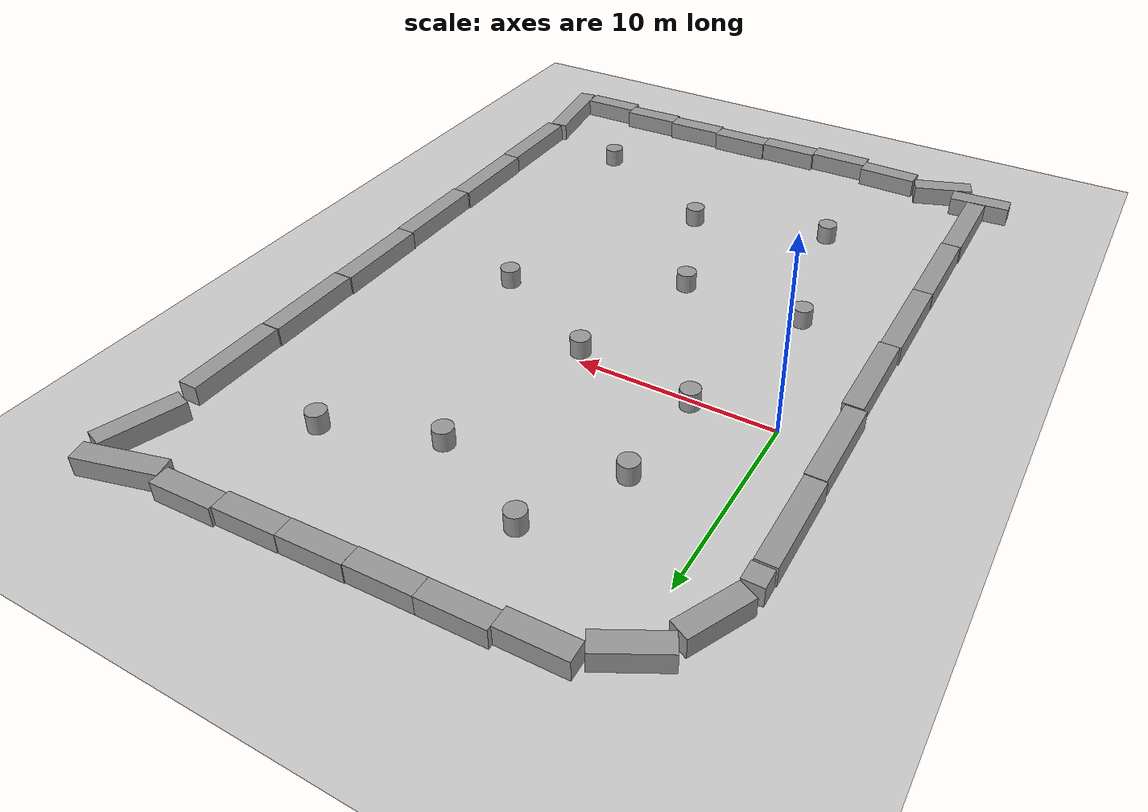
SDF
<sdf version="1.6">
 <world name="default">
  <model name="ground_plane">
   <static>1</static>
   <link name="link">
    <collision name="collision">
     <geometry><plane><normal>0 0 1</normal><size>100 100</size></plane></geometry>
     <surface>
      <contact><collide_bitmask>65535</collide_bitmask></contact>
      <friction><ode><mu>100</mu><mu2>50</mu2></ode></friction>
     </surface>
    </collision>
    <visual name="visual">
     <cast_shadows>0</cast_shadows>
     <geometry><plane><normal>0 0 1</normal><size>100 100</size></plane></geometry>
     <material>
      <script><uri>file://media/materials/scripts/gazebo.material</uri><name>Gazebo/Grey</name></script>
     </material>
    </visual>
   </link>
  </model>
  <light name="sun" type="directional">
   <pose>0 0 10 0 -0 0</pose>
   <diffuse>0.8 0.8 0.8 1</diffuse>
   <specular>0.2 0.2 0.2 1</specular>
   <attenuation>
    <range>1000</range>
    <constant>0.9</constant>
    <linear>0.01</linear>
    <quadratic>0.001</quadratic>
   </attenuation>
   <direction>-0.5 0.1 -0.9</direction>
  </light>
  <gravity>0 0 -9.8</gravity>
  <magnetic_field>6e-06 2.3e-05 -4.2e-05</magnetic_field>
  <atmosphere type="adiabatic"/>
  <physics name="default_physics" default="0" type="ode">
   <max_step_size>0.001</max_step_size>
   <real_time_factor>1</real_time_factor>
   <real_time_update_rate>1000</real_time_update_rate>
  </physics>
  <scene><ambient>0.4 0.4 0.4 1</ambient><background>0.7 0.7 0.7 1</background><shadows>1</shadows></scene>
  <audio><device>default</device></audio>
  <spherical_coordinates>
   <surface_model>EARTH_WGS84</surface_model>
   <latitude_deg>0</latitude_deg>
   <longitude_deg>0</longitude_deg>
   <elevation>0</elevation>
   <heading_deg>0</heading_deg>
  </spherical_coordinates>
  <model name="unit_box">
   <pose>-2.73566 0.438321 0.498102 -0.000778 -0 1e-05</pose>
   <link name="link">
    <inertial>
     <mass>1</mass>
     <inertia>
      <ixx>0.166667</ixx>
      <ixy>0</ixy>
      <ixz>0</ixz>
      <iyy>0.166667</iyy>
      <iyz>0</iyz>
      <izz>0.166667</izz>
     </inertia>
    </inertial>
    <collision name="collision"><geometry><box><size>1 4.87947 1</size></box></geometry></collision>
    <visual name="visual">
     <geometry><box><size>1 4.87947 1</size></box></geometry>
     <material>
      <script><name>Gazebo/Grey</name><uri>file://media/materials/scripts/gazebo.material</uri></script>
     </material>
    </visual>
   </link>
  </model>
  <model name="unit_box_clone">
   <pose>-2.56296 -4.59306 0.497729 0.000895 -0 -1.3e-05</pose>
   <link name="link">
    <inertial>
     <mass>1</mass>
     <inertia>
      <ixx>0.166667</ixx>
      <ixy>0</ixy>
      <ixz>0</ixz>
      <iyy>0.166667</iyy>
      <iyz>0</iyz>
      <izz>0.166667</izz>
     </inertia>
    </inertial>
    <collision name="collision"><geometry><box><size>1 5.07484 1</size></box></geometry></collision>
    <visual name="visual">
     <geometry><box><size>1 5.07484 1</size></box></geometry>
     <material>
      <script><name>Gazebo/Grey</name><uri>file://media/materials/scripts/gazebo.material</uri></script>
     </material>
    </visual>
   </link>
  </model>
  <model name="unit_box_clone_0">
   <pose>-2.78489 5.45828 0.5 0 1e-06 1.9e-05</pose>
   <link name="link">
    <inertial>
     <mass>1</mass>
     <inertia>
      <ixx>0.166667</ixx>
      <ixy>0</ixy>
      <ixz>0</ixz>
      <iyy>0.166667</iyy>
      <iyz>0</iyz>
      <izz>0.166667</izz>
     </inertia>
    </inertial>
    <collision name="collision"><geometry><box><size>1 5.07484 1</size></box></geometry></collision>
    <visual name="visual">
     <geometry><box><size>1 5.07484 1</size></box></geometry>
     <material>
      <script><name>Gazebo/Grey</name><uri>file://media/materials/scripts/gazebo.material</uri></script>
     </material>
    </visual>
   </link>
  </model>
  <model name="unit_box_clone_1">
   <pose>-2.63585 -9.6685 0.497729 -0.000895 -0 1.4e-05</pose>
   <link name="link">
    <inertial>
     <mass>1</mass>
     <inertia>
      <ixx>0.166667</ixx>
      <ixy>0</ixy>
      <ixz>0</ixz>
      <iyy>0.166667</iyy>
      <iyz>0</iyz>
      <izz>0.166667</izz>
     </inertia>
    </inertial>
    <collision name="collision"><geometry><box><size>1 5.07484 1</size></box></geometry></collision>
    <visual name="visual">
     <geometry><box><size>1 5.07484 1</size></box></geometry>
     <material>
      <script><name>Gazebo/Grey</name><uri>file://media/materials/scripts/gazebo.material</uri></script>
     </material>
    </visual>
   </link>
  </model>
  <model name="unit_box_clone_2">
   <pose>-2.64959 -14.7429 0.497729 0.000895 -0 -1.6e-05</pose>
   <link name="link">
    <inertial>
     <mass>1</mass>
     <inertia>
      <ixx>0.166667</ixx>
      <ixy>0</ixy>
      <ixz>0</ixz>
      <iyy>0.166667</iyy>
      <iyz>0</iyz>
      <izz>0.166667</izz>
     </inertia>
    </inertial>
    <collision name="collision"><geometry><box><size>1 5.07484 1</size></box></geometry></collision>
    <visual name="visual">
     <geometry><box><size>1 5.07484 1</size></box></geometry>
     <material>
      <script><name>Gazebo/Grey</name><uri>file://media/materials/scripts/gazebo.material</uri></script>
     </material>
    </visual>
   </link>
  </model>
  <model name="unit_box_clone_3">
   <pose>-2.69798 -19.8233 0.497729 -0.000895 -0 1.3e-05</pose>
   <link name="link">
    <inertial>
     <mass>1</mass>
     <inertia>
      <ixx>0.166667</ixx>
      <ixy>0</ixy>
      <ixz>0</ixz>
      <iyy>0.166667</iyy>
      <iyz>0</iyz>
      <izz>0.166667</izz>
     </inertia>
    </inertial>
    <collision name="collision"><geometry><box><size>1 5.07484 1</size></box></geometry></collision>
    <visual name="visual">
     <geometry><box><size>1 5.07484 1</size></box></geometry>
     <material>
      <script><name>Gazebo/Grey</name><uri>file://media/materials/scripts/gazebo.material</uri></script>
     </material>
    </visual>
   </link>
  </model>
  <model name="unit_box_clone_4">
   <pose>23.6706 -21.9774 0.499996 0 7e-06 0.148191</pose>
   <link name="link">
    <inertial>
     <mass>1</mass>
     <inertia>
      <ixx>0.166667</ixx>
      <ixy>0</ixy>
      <ixz>0</ixz>
      <iyy>0.166667</iyy>
      <iyz>0</iyz>
      <izz>0.166667</izz>
     </inertia>
    </inertial>
    <collision name="collision"><geometry><box><size>1 5.07484 1</size></box></geometry></collision>
    <visual name="visual">
     <geometry><box><size>1 5.07484 1</size></box></geometry>
     <material>
      <script><name>Gazebo/Grey</name><uri>file://media/materials/scripts/gazebo.material</uri></script>
     </material>
    </visual>
   </link>
  </model>
  <model name="unit_box_clone_5">
   <pose>23.5159 -16.8563 0.497729 0.000895 -0 -1.4e-05</pose>
   <link name="link">
    <inertial>
     <mass>1</mass>
     <inertia>
      <ixx>0.166667</ixx>
      <ixy>0</ixy>
      <ixz>0</ixz>
      <iyy>0.166667</iyy>
      <iyz>0</iyz>
      <izz>0.166667</izz>
     </inertia>
    </inertial>
    <collision name="collision"><geometry><box><size>1 5.07484 1</size></box></geometry></collision>
    <visual name="visual">
     <geometry><box><size>1 5.07484 1</size></box></geometry>
     <material>
      <script><name>Gazebo/Grey</name><uri>file://media/materials/scripts/gazebo.material</uri></script>
     </material>
    </visual>
   </link>
  </model>
  <model name="unit_box_clone_6">
   <pose>23.4721 -11.7794 0.499995 -1e-06 3e-06 4.2e-05</pose>
   <link name="link">
    <inertial>
     <mass>1</mass>
     <inertia>
      <ixx>0.166667</ixx>
      <ixy>0</ixy>
      <ixz>0</ixz>
      <iyy>0.166667</iyy>
      <iyz>0</iyz>
      <izz>0.166667</izz>
     </inertia>
    </inertial>
    <collision name="collision"><geometry><box><size>1 5.07484 1</size></box></geometry></collision>
    <visual name="visual">
     <geometry><box><size>1 5.07484 1</size></box></geometry>
     <material>
      <script><name>Gazebo/Grey</name><uri>file://media/materials/scripts/gazebo.material</uri></script>
     </material>
    </visual>
   </link>
  </model>
  <model name="unit_box_clone_7">
   <pose>23.5486 -6.70446 0.499999 -0 -2e-06 5.7e-05</pose>
   <link name="link">
    <inertial>
     <mass>1</mass>
     <inertia>
      <ixx>0.166667</ixx>
      <ixy>0</ixy>
      <ixz>0</ixz>
      <iyy>0.166667</iyy>
      <iyz>0</iyz>
      <izz>0.166667</izz>
     </inertia>
    </inertial>
    <collision name="collision"><geometry><box><size>1 5.07484 1</size></box></geometry></collision>
    <visual name="visual">
     <geometry><box><size>1 5.07484 1</size></box></geometry>
     <material>
      <script><name>Gazebo/Grey</name><uri>file://media/materials/scripts/gazebo.material</uri></script>
     </material>
    </visual>
   </link>
  </model>
  <model name="unit_box_clone_8">
   <pose>23.4944 -1.62947 0.499995 1e-06 -3e-06 6.4e-05</pose>
   <link name="link">
    <inertial>
     <mass>1</mass>
     <inertia>
      <ixx>0.166667</ixx>
      <ixy>0</ixy>
      <ixz>0</ixz>
      <iyy>0.166667</iyy>
      <iyz>0</iyz>
      <izz>0.166667</izz>
     </inertia>
    </inertial>
    <collision name="collision"><geometry><box><size>1 5.07484 1</size></box></geometry></collision>
    <visual name="visual">
     <geometry><box><size>1 5.07484 1</size></box></geometry>
     <material>
      <script><name>Gazebo/Grey</name><uri>file://media/materials/scripts/gazebo.material</uri></script>
     </material>
    </visual>
   </link>
  </model>
  <model name="unit_box_clone_9">
   <pose>23.5521 3.46835 0.497729 -0.000895 -0 1.3e-05</pose>
   <link name="link">
    <inertial>
     <mass>1</mass>
     <inertia>
      <ixx>0.166667</ixx>
      <ixy>0</ixy>
      <ixz>0</ixz>
      <iyy>0.166667</iyy>
      <iyz>0</iyz>
      <izz>0.166667</izz>
     </inertia>
    </inertial>
    <collision name="collision"><geometry><box><size>1 5.07484 1</size></box></geometry></collision>
    <visual name="visual">
     <geometry><box><size>1 5.07484 1</size></box></geometry>
     <material>
      <script><name>Gazebo/Grey</name><uri>file://media/materials/scripts/gazebo.material</uri></script>
     </material>
    </visual>
   </link>
  </model>
  <model name="unit_box_clone_10">
   <pose>23.5964 8.5748 0.497729 0.000895 -0 -1.3e-05</pose>
   <link name="link">
    <inertial>
     <mass>1</mass>
     <inertia>
      <ixx>0.166667</ixx>
      <ixy>0</ixy>
      <ixz>0</ixz>
      <iyy>0.166667</iyy>
      <iyz>0</iyz>
      <izz>0.166667</izz>
     </inertia>
    </inertial>
    <collision name="collision"><geometry><box><size>1 5.07484 1</size></box></geometry></collision>
    <visual name="visual">
     <geometry><box><size>1 5.07484 1</size></box></geometry>
     <material>
      <script><name>Gazebo/Grey</name><uri>file://media/materials/scripts/gazebo.material</uri></script>
     </material>
    </visual>
   </link>
  </model>
  <model name="unit_box_clone_11">
   <pose>23.7179 13.6698 0.5 -1e-06 1e-06 -0.317555</pose>
   <link name="link">
    <inertial>
     <mass>1</mass>
     <inertia>
      <ixx>0.166667</ixx>
      <ixy>0</ixy>
      <ixz>0</ixz>
      <iyy>0.166667</iyy>
      <iyz>0</iyz>
      <izz>0.166667</izz>
     </inertia>
    </inertial>
    <collision name="collision"><geometry><box><size>1 3.94087 1</size></box></geometry></collision>
    <visual name="visual">
     <geometry><box><size>1 3.94087 1</size></box></geometry>
     <material>
      <script><name>Gazebo/Grey</name><uri>file://media/materials/scripts/gazebo.material</uri></script>
     </material>
    </visual>
   </link>
  </model>
  <model name="unit_box_0">
   <pose>22.3346 15.8216 0.499999 -2e-06 0 0.253763</pose>
   <link name="link">
    <inertial>
     <mass>1</mass>
     <inertia>
      <ixx>0.166667</ixx>
      <ixy>0</ixy>
      <ixz>0</ixz>
      <iyy>0.166667</iyy>
      <iyz>0</iyz>
      <izz>0.166667</izz>
     </inertia>
    </inertial>
    <collision name="collision"><geometry><box><size>4.1326 1 1</size></box></geometry></collision>
    <visual name="visual">
     <geometry><box><size>4.1326 1 1</size></box></geometry>
     <material>
      <script><name>Gazebo/Grey</name><uri>file://media/materials/scripts/gazebo.material</uri></script>
     </material>
    </visual>
   </link>
  </model>
  <model name="unit_box_0_clone">
   <pose>18.6271 15.6469 0.499994 5e-06 2e-06 0.036568</pose>
   <link name="link">
    <inertial>
     <mass>1</mass>
     <inertia>
      <ixx>0.166667</ixx>
      <ixy>0</ixy>
      <ixz>0</ixz>
      <iyy>0.166667</iyy>
      <iyz>0</iyz>
      <izz>0.166667</izz>
     </inertia>
    </inertial>
    <collision name="collision"><geometry><box><size>3.17161 1 1</size></box></geometry></collision>
    <visual name="visual">
     <geometry><box><size>3.17161 1 1</size></box></geometry>
     <material>
      <script><name>Gazebo/Grey</name><uri>file://media/materials/scripts/gazebo.material</uri></script>
     </material>
    </visual>
   </link>
  </model>
  <model name="unit_box_0_clone_0">
   <pose>15.4619 15.407 0.499997 5e-06 0 0.036748</pose>
   <link name="link">
    <inertial>
     <mass>1</mass>
     <inertia>
      <ixx>0.166667</ixx>
      <ixy>0</ixy>
      <ixz>0</ixz>
      <iyy>0.166667</iyy>
      <iyz>0</iyz>
      <izz>0.166667</izz>
     </inertia>
    </inertial>
    <collision name="collision"><geometry><box><size>3.17161 1 1</size></box></geometry></collision>
    <visual name="visual">
     <geometry><box><size>3.17161 1 1</size></box></geometry>
     <material>
      <script><name>Gazebo/Grey</name><uri>file://media/materials/scripts/gazebo.material</uri></script>
     </material>
    </visual>
   </link>
  </model>
  <model name="unit_box_0_clone_1">
   <pose>12.2923 15.2751 0.499998 -4e-06 -0 0.035478</pose>
   <link name="link">
    <inertial>
     <mass>1</mass>
     <inertia>
      <ixx>0.166667</ixx>
      <ixy>0</ixy>
      <ixz>0</ixz>
      <iyy>0.166667</iyy>
      <iyz>0</iyz>
      <izz>0.166667</izz>
     </inertia>
    </inertial>
    <collision name="collision"><geometry><box><size>3.17161 1 1</size></box></geometry></collision>
    <visual name="visual">
     <geometry><box><size>3.17161 1 1</size></box></geometry>
     <material>
      <script><name>Gazebo/Grey</name><uri>file://media/materials/scripts/gazebo.material</uri></script>
     </material>
    </visual>
   </link>
  </model>
  <model name="unit_box_0_clone_2">
   <pose>9.12126 15.133 0.499995 -1e-05 -0 0.030957</pose>
   <link name="link">
    <inertial>
     <mass>1</mass>
     <inertia>
      <ixx>0.166667</ixx>
      <ixy>0</ixy>
      <ixz>0</ixz>
      <iyy>0.166667</iyy>
      <iyz>0</iyz>
      <izz>0.166667</izz>
     </inertia>
    </inertial>
    <collision name="collision"><geometry><box><size>3.17161 1 1</size></box></geometry></collision>
    <visual name="visual">
     <geometry><box><size>3.17161 1 1</size></box></geometry>
     <material>
      <script><name>Gazebo/Grey</name><uri>file://media/materials/scripts/gazebo.material</uri></script>
     </material>
    </visual>
   </link>
  </model>
  <model name="unit_box_0_clone_3">
   <pose>5.95016 15.0391 0.499941 0 -3.7e-05 0.029179</pose>
   <link name="link">
    <inertial>
     <mass>1</mass>
     <inertia>
      <ixx>0.166667</ixx>
      <ixy>0</ixy>
      <ixz>0</ixz>
      <iyy>0.166667</iyy>
      <iyz>0</iyz>
      <izz>0.166667</izz>
     </inertia>
    </inertial>
    <collision name="collision"><geometry><box><size>3.17161 1 1</size></box></geometry></collision>
    <visual name="visual">
     <geometry><box><size>3.17161 1 1</size></box></geometry>
     <material>
      <script><name>Gazebo/Grey</name><uri>file://media/materials/scripts/gazebo.material</uri></script>
     </material>
    </visual>
   </link>
  </model>
  <model name="unit_box_0_clone_4">
   <pose>2.7848 14.7287 0.499996 -7e-06 -0 0.026237</pose>
   <link name="link">
    <inertial>
     <mass>1</mass>
     <inertia>
      <ixx>0.166667</ixx>
      <ixy>0</ixy>
      <ixz>0</ixz>
      <iyy>0.166667</iyy>
      <iyz>0</iyz>
      <izz>0.166667</izz>
     </inertia>
    </inertial>
    <collision name="collision"><geometry><box><size>3.17161 1 1</size></box></geometry></collision>
    <visual name="visual">
     <geometry><box><size>3.17161 1 1</size></box></geometry>
     <material>
      <script><name>Gazebo/Grey</name><uri>file://media/materials/scripts/gazebo.material</uri></script>
     </material>
    </visual>
   </link>
  </model>
  <model name="unit_box_0_clone_5">
   <pose>-0.187222 13.4421 0.5 0 -0 0.49441</pose>
   <link name="link">
    <inertial>
     <mass>1</mass>
     <inertia>
      <ixx>0.166667</ixx>
      <ixy>0</ixy>
      <ixz>0</ixz>
      <iyy>0.166667</iyy>
      <iyz>0</iyz>
      <izz>0.166667</izz>
     </inertia>
    </inertial>
    <collision name="collision"><geometry><box><size>3.17161 1 1</size></box></geometry></collision>
    <visual name="visual">
     <geometry><box><size>3.17161 1 1</size></box></geometry>
     <material>
      <script><name>Gazebo/Grey</name><uri>file://media/materials/scripts/gazebo.material</uri></script>
     </material>
    </visual>
   </link>
  </model>
  <model name="unit_box_0_clone_6">
   <pose>-2.03338 10.8093 0.499995 0 -3e-06 1.11812</pose>
   <link name="link">
    <inertial>
     <mass>1</mass>
     <inertia>
      <ixx>0.166667</ixx>
      <ixy>0</ixy>
      <ixz>0</ixz>
      <iyy>0.166667</iyy>
      <iyz>0</iyz>
      <izz>0.166667</izz>
     </inertia>
    </inertial>
    <collision name="collision"><geometry><box><size>3.17161 1 1</size></box></geometry></collision>
    <visual name="visual">
     <geometry><box><size>3.17161 1 1</size></box></geometry>
     <material>
      <script><name>Gazebo/Grey</name><uri>file://media/materials/scripts/gazebo.material</uri></script>
     </material>
    </visual>
   </link>
  </model>
  <model name="unit_box_1">
   <pose>-2.74107 8.59458 0.499995 -1e-05 0 -9e-06</pose>
   <link name="link">
    <inertial>
     <mass>1</mass>
     <inertia>
      <ixx>0.166667</ixx>
      <ixy>0</ixy>
      <ixz>0</ixz>
      <iyy>0.166667</iyy>
      <iyz>0</iyz>
      <izz>0.166667</izz>
     </inertia>
    </inertial>
    <collision name="collision"><geometry><box><size>1 1 1</size></box></geometry></collision>
    <visual name="visual">
     <geometry><box><size>1 1 1</size></box></geometry>
     <material>
      <script><name>Gazebo/Grey</name><uri>file://media/materials/scripts/gazebo.material</uri></script>
     </material>
    </visual>
   </link>
  </model>
  <model name="unit_box_0_clone_1_clone">
   <pose>21.8329 -24.1432 0.499922 0 -0 0.017703</pose>
   <link name="link">
    <inertial>
     <mass>1</mass>
     <inertia>
      <ixx>0.166667</ixx>
      <ixy>0</ixy>
      <ixz>0</ixz>
      <iyy>0.166667</iyy>
      <iyz>0</iyz>
      <izz>0.166667</izz>
     </inertia>
    </inertial>
    <collision name="collision"><geometry><box><size>3.17161 1 1</size></box></geometry></collision>
    <visual name="visual">
     <geometry><box><size>3.17161 1 1</size></box></geometry>
     <material>
      <script><name>Gazebo/Grey</name><uri>file://media/materials/scripts/gazebo.material</uri></script>
     </material>
    </visual>
   </link>
  </model>
  <model name="unit_box_0_clone_1_clone_0">
   <pose>18.6479 -23.8456 0.499996 -7e-06 -0 0.03334</pose>
   <link name="link">
    <inertial>
     <mass>1</mass>
     <inertia>
      <ixx>0.166667</ixx>
      <ixy>0</ixy>
      <ixz>0</ixz>
      <iyy>0.166667</iyy>
      <iyz>0</iyz>
      <izz>0.166667</izz>
     </inertia>
    </inertial>
    <collision name="collision"><geometry><box><size>3.17161 1 1</size></box></geometry></collision>
    <visual name="visual">
     <geometry><box><size>3.17161 1 1</size></box></geometry>
     <material>
      <script><name>Gazebo/Grey</name><uri>file://media/materials/scripts/gazebo.material</uri></script>
     </material>
    </visual>
   </link>
  </model>
  <model name="unit_box_0_clone_1_clone_1">
   <pose>15.4727 -23.7913 0.49999 -0 -4e-06 0.033341</pose>
   <link name="link">
    <inertial>
     <mass>1</mass>
     <inertia>
      <ixx>0.166667</ixx>
      <ixy>0</ixy>
      <ixz>0</ixz>
      <iyy>0.166667</iyy>
      <iyz>0</iyz>
      <izz>0.166667</izz>
     </inertia>
    </inertial>
    <collision name="collision"><geometry><box><size>3.17161 1 1</size></box></geometry></collision>
    <visual name="visual">
     <geometry><box><size>3.17161 1 1</size></box></geometry>
     <material>
      <script><name>Gazebo/Grey</name><uri>file://media/materials/scripts/gazebo.material</uri></script>
     </material>
    </visual>
   </link>
  </model>
  <model name="unit_box_0_clone_1_clone_2">
   <pose>12.2931 -23.7122 0.50207 0.000293 -0.001213 0.02396</pose>
   <link name="link">
    <inertial>
     <mass>1</mass>
     <inertia>
      <ixx>0.166667</ixx>
      <ixy>0</ixy>
      <ixz>0</ixz>
      <iyy>0.166667</iyy>
      <iyz>0</iyz>
      <izz>0.166667</izz>
     </inertia>
    </inertial>
    <collision name="collision"><geometry><box><size>3.17161 1 1</size></box></geometry></collision>
    <visual name="visual">
     <geometry><box><size>3.17161 1 1</size></box></geometry>
     <material>
      <script><name>Gazebo/Grey</name><uri>file://media/materials/scripts/gazebo.material</uri></script>
     </material>
    </visual>
   </link>
  </model>
  <model name="unit_box_0_clone_1_clone_3">
   <pose>9.1233 -23.8841 0.501772 1.1e-05 -0.001136 0.021337</pose>
   <link name="link">
    <inertial>
     <mass>1</mass>
     <inertia>
      <ixx>0.166667</ixx>
      <ixy>0</ixy>
      <ixz>0</ixz>
      <iyy>0.166667</iyy>
      <iyz>0</iyz>
      <izz>0.166667</izz>
     </inertia>
    </inertial>
    <collision name="collision"><geometry><box><size>3.17161 1 1</size></box></geometry></collision>
    <visual name="visual">
     <geometry><box><size>3.17161 1 1</size></box></geometry>
     <material>
      <script><name>Gazebo/Grey</name><uri>file://media/materials/scripts/gazebo.material</uri></script>
     </material>
    </visual>
   </link>
  </model>
  <model name="unit_box_0_clone_1_clone_4">
   <pose>5.95221 -24.1402 0.500838 0.000173 -0.001098 0.012793</pose>
   <link name="link">
    <inertial>
     <mass>1</mass>
     <inertia>
      <ixx>0.166667</ixx>
      <ixy>0</ixy>
      <ixz>0</ixz>
      <iyy>0.166667</iyy>
      <iyz>0</iyz>
      <izz>0.166667</izz>
     </inertia>
    </inertial>
    <collision name="collision"><geometry><box><size>3.17161 1 1</size></box></geometry></collision>
    <visual name="visual">
     <geometry><box><size>3.17161 1 1</size></box></geometry>
     <material>
      <script><name>Gazebo/Grey</name><uri>file://media/materials/scripts/gazebo.material</uri></script>
     </material>
    </visual>
   </link>
  </model>
  <model name="unit_box_0_clone_1_clone_5">
   <pose>2.77357 -23.6894 0.500091 1.1e-05 -0.000666 -0.019592</pose>
   <link name="link">
    <inertial>
     <mass>1</mass>
     <inertia>
      <ixx>0.166667</ixx>
      <ixy>0</ixy>
      <ixz>0</ixz>
      <iyy>0.166667</iyy>
      <iyz>0</iyz>
      <izz>0.166667</izz>
     </inertia>
    </inertial>
    <collision name="collision"><geometry><box><size>3.17161 1 1</size></box></geometry></collision>
    <visual name="visual">
     <geometry><box><size>3.17161 1 1</size></box></geometry>
     <material>
      <script><name>Gazebo/Grey</name><uri>file://media/materials/scripts/gazebo.material</uri></script>
     </material>
    </visual>
   </link>
  </model>
  <model name="unit_box_0_clone_1_clone_6">
   <pose>-0.47358 -23.563 0.5 0 -0 0.346012</pose>
   <link name="link">
    <inertial>
     <mass>1</mass>
     <inertia>
      <ixx>0.166667</ixx>
      <ixy>0</ixy>
      <ixz>0</ixz>
      <iyy>0.166667</iyy>
      <iyz>0</iyz>
      <izz>0.166667</izz>
     </inertia>
    </inertial>
    <collision name="collision"><geometry><box><size>3.17161 1 1</size></box></geometry></collision>
    <visual name="visual">
     <geometry><box><size>3.17161 1 1</size></box></geometry>
     <material>
      <script><name>Gazebo/Grey</name><uri>file://media/materials/scripts/gazebo.material</uri></script>
     </material>
    </visual>
   </link>
  </model>
  <model name="unit_box_0_clone_1_clone_7">
   <pose>-2.82333 -22.908 0.499996 -7e-06 -0 0.072042</pose>
   <link name="link">
    <inertial>
     <mass>1</mass>
     <inertia>
      <ixx>0.166667</ixx>
      <ixy>0</ixy>
      <ixz>0</ixz>
      <iyy>0.166667</iyy>
      <iyz>0</iyz>
      <izz>0.166667</izz>
     </inertia>
    </inertial>
    <collision name="collision"><geometry><box><size>3.17161 1 1</size></box></geometry></collision>
    <visual name="visual">
     <geometry><box><size>3.17161 1 1</size></box></geometry>
     <material>
      <script><name>Gazebo/Grey</name><uri>file://media/materials/scripts/gazebo.material</uri></script>
     </material>
    </visual>
   </link>
  </model>
  <model name="unit_cylinder">
   <pose>10.9645 -14.2652 0.499997 0 -0 0</pose>
   <link name="link">
    <inertial>
     <mass>1</mass>
     <inertia><ixx>0.145833</ixx><ixy>0</ixy><ixz>0</ixz><iyy>0.145833</iyy><iyz>0</iyz><izz>0.125</izz></inertia>
    </inertial>
    <collision name="collision">
     <geometry><cylinder><radius>0.5</radius><length>1</length></cylinder></geometry>
    </collision>
    <visual name="visual">
     <geometry><cylinder><radius>0.5</radius><length>1</length></cylinder></geometry>
     <material>
      <script><name>Gazebo/Grey</name><uri>file://media/materials/scripts/gazebo.material</uri></script>
     </material>
    </visual>
   </link>
  </model>
  <model name="unit_cylinder_clone">
   <pose>16.5215 -3.91732 0.499997 0 -0 0</pose>
   <link name="link">
    <inertial>
     <mass>1</mass>
     <inertia><ixx>0.145833</ixx><ixy>0</ixy><ixz>0</ixz><iyy>0.145833</iyy><iyz>0</iyz><izz>0.125</izz></inertia>
    </inertial>
    <collision name="collision">
     <geometry><cylinder><radius>0.5</radius><length>1</length></cylinder></geometry>
    </collision>
    <visual name="visual">
     <geometry><cylinder><radius>0.5</radius><length>1</length></cylinder></geometry>
     <material>
      <script><name>Gazebo/Grey</name><uri>file://media/materials/scripts/gazebo.material</uri></script>
     </material>
    </visual>
   </link>
  </model>
  <model name="unit_cylinder_clone_0">
   <pose>12.0621 7.76125 0.499992 -3e-06 3e-06 0</pose>
   <link name="link">
    <inertial>
     <mass>1</mass>
     <inertia><ixx>0.145833</ixx><ixy>0</ixy><ixz>0</ixz><iyy>0.145833</iyy><iyz>0</iyz><izz>0.125</izz></inertia>
    </inertial>
    <collision name="collision">
     <geometry><cylinder><radius>0.5</radius><length>1</length></cylinder></geometry>
    </collision>
    <visual name="visual">
     <geometry><cylinder><radius>0.5</radius><length>1</length></cylinder></geometry>
     <material>
      <script><name>Gazebo/Grey</name><uri>file://media/materials/scripts/gazebo.material</uri></script>
     </material>
    </visual>
   </link>
  </model>
  <model name="unit_cylinder_clone_1">
   <pose>8.42517 -8.05996 0.499998 3e-06 -3e-06 0</pose>
   <link name="link">
    <inertial>
     <mass>1</mass>
     <inertia><ixx>0.145833</ixx><ixy>0</ixy><ixz>0</ixz><iyy>0.145833</iyy><iyz>0</iyz><izz>0.125</izz></inertia>
    </inertial>
    <collision name="collision">
     <geometry><cylinder><radius>0.5</radius><length>1</length></cylinder></geometry>
    </collision>
    <visual name="visual">
     <geometry><cylinder><radius>0.5</radius><length>1</length></cylinder></geometry>
     <material>
      <script><name>Gazebo/Grey</name><uri>file://media/materials/scripts/gazebo.material</uri></script>
     </material>
    </visual>
   </link>
  </model>
  <model name="unit_cylinder_clone_2">
   <pose>3.81344 -16.1415 0.499992 -3e-06 3e-06 0</pose>
   <link name="link">
    <inertial>
     <mass>1</mass>
     <inertia><ixx>0.145833</ixx><ixy>0</ixy><ixz>0</ixz><iyy>0.145833</iyy><iyz>0</iyz><izz>0.125</izz></inertia>
    </inertial>
    <collision name="collision">
     <geometry><cylinder><radius>0.5</radius><length>1</length></cylinder></geometry>
    </collision>
    <visual name="visual">
     <geometry><cylinder><radius>0.5</radius><length>1</length></cylinder></geometry>
     <material>
      <script><name>Gazebo/Grey</name><uri>file://media/materials/scripts/gazebo.material</uri></script>
     </material>
    </visual>
   </link>
  </model>
  <model name="unit_cylinder_clone_3">
   <pose>18.5457 -18.3703 0.499998 3e-06 -4e-06 0</pose>
   <link name="link">
    <inertial>
     <mass>1</mass>
     <inertia><ixx>0.145833</ixx><ixy>0</ixy><ixz>0</ixz><iyy>0.145833</iyy><iyz>0</iyz><izz>0.125</izz></inertia>
    </inertial>
    <collision name="collision">
     <geometry><cylinder><radius>0.5</radius><length>1</length></cylinder></geometry>
    </collision>
    <visual name="visual">
     <geometry><cylinder><radius>0.5</radius><length>1</length></cylinder></geometry>
     <material>
      <script><name>Gazebo/Grey</name><uri>file://media/materials/scripts/gazebo.material</uri></script>
     </material>
    </visual>
   </link>
  </model>
  <model name="unit_cylinder_clone_4">
   <pose>17.4731 9.59053 0.499992 -3e-06 4e-06 0</pose>
   <link name="link">
    <inertial>
     <mass>1</mass>
     <inertia><ixx>0.145833</ixx><ixy>0</ixy><ixz>0</ixz><iyy>0.145833</iyy><iyz>0</iyz><izz>0.125</izz></inertia>
    </inertial>
    <collision name="collision">
     <geometry><cylinder><radius>0.5</radius><length>1</length></cylinder></geometry>
    </collision>
    <visual name="visual">
     <geometry><cylinder><radius>0.5</radius><length>1</length></cylinder></geometry>
     <material>
      <script><name>Gazebo/Grey</name><uri>file://media/materials/scripts/gazebo.material</uri></script>
     </material>
    </visual>
   </link>
  </model>
  <model name="unit_cylinder_clone_5">
   <pose>4.23016 5.66969 0.499998 3e-06 -4e-06 0</pose>
   <link name="link">
    <inertial>
     <mass>1</mass>
     <inertia><ixx>0.145833</ixx><ixy>0</ixy><ixz>0</ixz><iyy>0.145833</iyy><iyz>0</iyz><izz>0.125</izz></inertia>
    </inertial>
    <collision name="collision">
     <geometry><cylinder><radius>0.5</radius><length>1</length></cylinder></geometry>
    </collision>
    <visual name="visual">
     <geometry><cylinder><radius>0.5</radius><length>1</length></cylinder></geometry>
     <material>
      <script><name>Gazebo/Grey</name><uri>file://media/materials/scripts/gazebo.material</uri></script>
     </material>
    </visual>
   </link>
  </model>
  <model name="unit_cylinder_clone_6">
   <pose>2.06705 -8.0395 0.499992 -3e-06 4e-06 0</pose>
   <link name="link">
    <inertial>
     <mass>1</mass>
     <inertia><ixx>0.145833</ixx><ixy>0</ixy><ixz>0</ixz><iyy>0.145833</iyy><iyz>0</iyz><izz>0.125</izz></inertia>
    </inertial>
    <collision name="collision">
     <geometry><cylinder><radius>0.5</radius><length>1</length></cylinder></geometry>
    </collision>
    <visual name="visual">
     <geometry><cylinder><radius>0.5</radius><length>1</length></cylinder></geometry>
     <material>
      <script><name>Gazebo/Grey</name><uri>file://media/materials/scripts/gazebo.material</uri></script>
     </material>
    </visual>
   </link>
  </model>
  <model name="unit_cylinder_clone_7">
   <pose>10.3084 -0.603933 0.499998 3e-06 -4e-06 0</pose>
   <link name="link">
    <inertial>
     <mass>1</mass>
     <inertia><ixx>0.145833</ixx><ixy>0</ixy><ixz>0</ixz><iyy>0.145833</iyy><iyz>0</iyz><izz>0.125</izz></inertia>
    </inertial>
    <collision name="collision">
     <geometry><cylinder><radius>0.5</radius><length>1</length></cylinder></geometry>
    </collision>
    <visual name="visual">
     <geometry><cylinder><radius>0.5</radius><length>1</length></cylinder></geometry>
     <material>
      <script><name>Gazebo/Grey</name><uri>file://media/materials/scripts/gazebo.material</uri></script>
     </material>
    </visual>
   </link>
  </model>
  <model name="unit_cylinder_clone_8">
   <pose>6.70392 10.2603 0.499992 -3e-06 4e-06 0</pose>
   <link name="link">
    <inertial>
     <mass>1</mass>
     <inertia><ixx>0.145833</ixx><ixy>0</ixy><ixz>0</ixz><iyy>0.145833</iyy><iyz>0</iyz><izz>0.125</izz></inertia>
    </inertial>
    <collision name="collision">
     <geometry><cylinder><radius>0.5</radius><length>1</length></cylinder></geometry>
    </collision>
    <visual name="visual">
     <geometry><cylinder><radius>0.5</radius><length>1</length></cylinder></geometry>
     <material>
      <script><name>Gazebo/Grey</name><uri>file://media/materials/scripts/gazebo.material</uri></script>
     </material>
    </visual>
   </link>
  </model>
  <model name="unit_cylinder_clone_9">
   <pose>4.07644 0.308511 0.499998 3e-06 -4e-06 0</pose>
   <link name="link">
    <inertial>
     <mass>1</mass>
     <inertia><ixx>0.145833</ixx><ixy>0</ixy><ixz>0</ixz><iyy>0.145833</iyy><iyz>0</iyz><izz>0.125</izz></inertia>
    </inertial>
    <collision name="collision">
     <geometry><cylinder><radius>0.5</radius><length>1</length></cylinder></geometry>
    </collision>
    <visual name="visual">
     <geometry><cylinder><radius>0.5</radius><length>1</length></cylinder></geometry>
     <material>
      <script><name>Gazebo/Grey</name><uri>file://media/materials/scripts/gazebo.material</uri></script>
     </material>
    </visual>
   </link>
  </model>
 </world>
</sdf>
